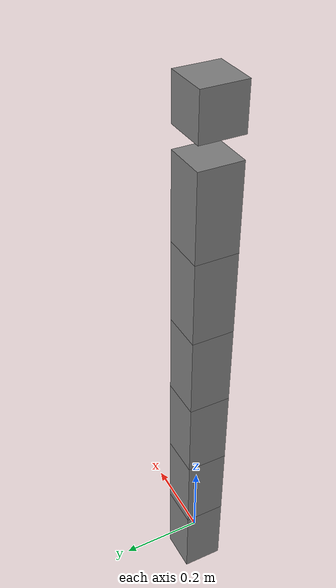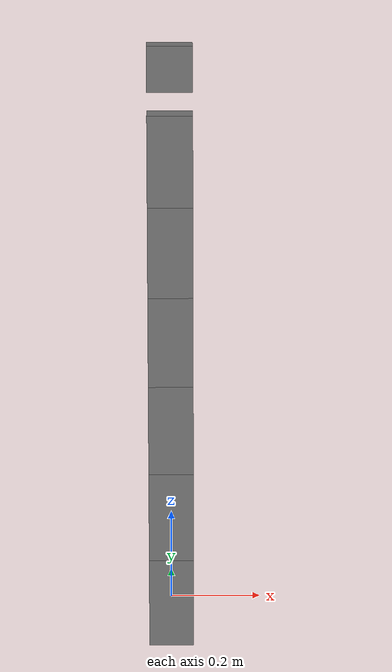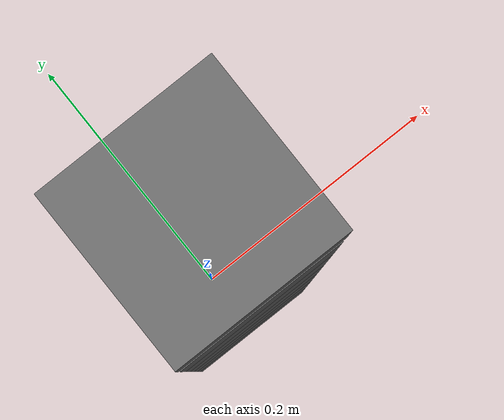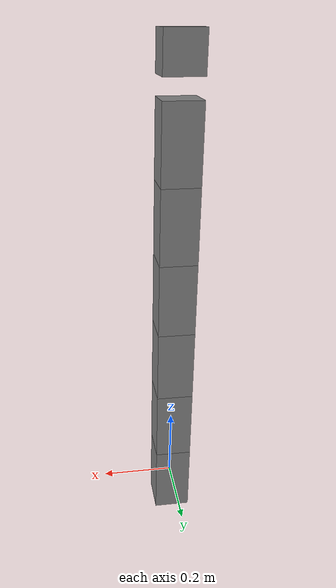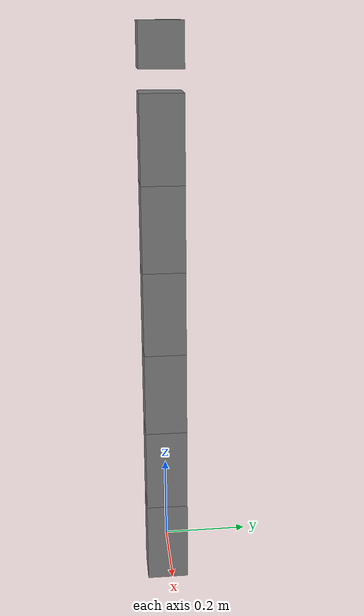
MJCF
<mujoco model="minimal_7dof">
  <compiler angle="radian"/>
  <option timestep="0.01"/>
  <worldbody>
    <body name="link0" pos="0 0 0">
      <joint name="j0" type="hinge" axis="0 0 1" range="-3.14 3.14"/>
      <geom type="box" size="0.05 0.05 0.1"/>
      <body name="link1" pos="0 0 0.2">
        <joint name="j1" type="hinge" axis="0 1 0" range="-2.09 2.09"/>
        <geom type="box" size="0.05 0.05 0.1"/>
        <body name="link2" pos="0 0 0.2">
          <joint name="j2" type="hinge" axis="0 0 1" range="-3.14 3.14"/>
          <geom type="box" size="0.05 0.05 0.1"/>
          <body name="link3" pos="0 0 0.2">
            <joint name="j3" type="hinge" axis="0 1 0" range="-2.09 2.09"/>
            <geom type="box" size="0.05 0.05 0.1"/>
            <body name="link4" pos="0 0 0.2">
              <joint name="j4" type="hinge" axis="0 0 1" range="-3.14 3.14"/>
              <geom type="box" size="0.05 0.05 0.1"/>
              <body name="link5" pos="0 0 0.2">
                <joint name="j5" type="hinge" axis="0 1 0" range="-2.09 2.09"/>
                <geom type="box" size="0.05 0.05 0.1"/>
                <body name="link6" pos="0 0 0.2">
                  <joint name="j6" type="hinge" axis="0 0 1" range="-3.14 3.14"/>
                  <geom type="box" size="0.05 0.05 0.05"/>
                </body>
              </body>
            </body>
          </body>
        </body>
      </body>
    </body>
  </worldbody>
  <actuator>
    <position name="a0" joint="j0" kp="500" kv="50"/>
    <position name="a1" joint="j1" kp="500" kv="50"/>
    <position name="a2" joint="j2" kp="500" kv="50"/>
    <position name="a3" joint="j3" kp="500" kv="50"/>
    <position name="a4" joint="j4" kp="500" kv="50"/>
    <position name="a5" joint="j5" kp="500" kv="50"/>
    <position name="a6" joint="j6" kp="500" kv="50"/>
  </actuator>
</mujoco>
